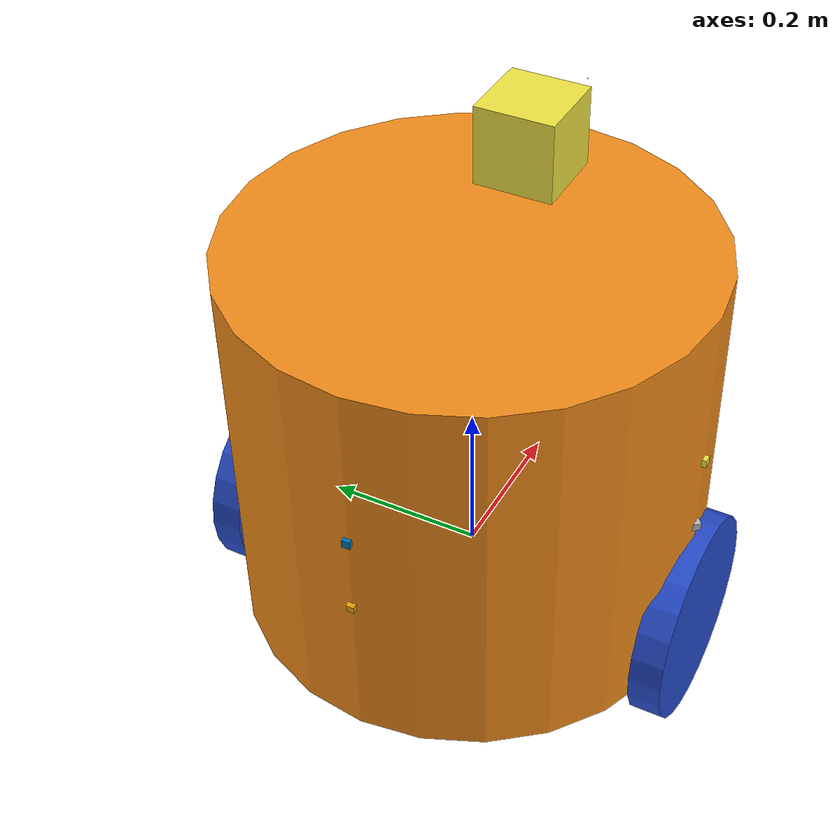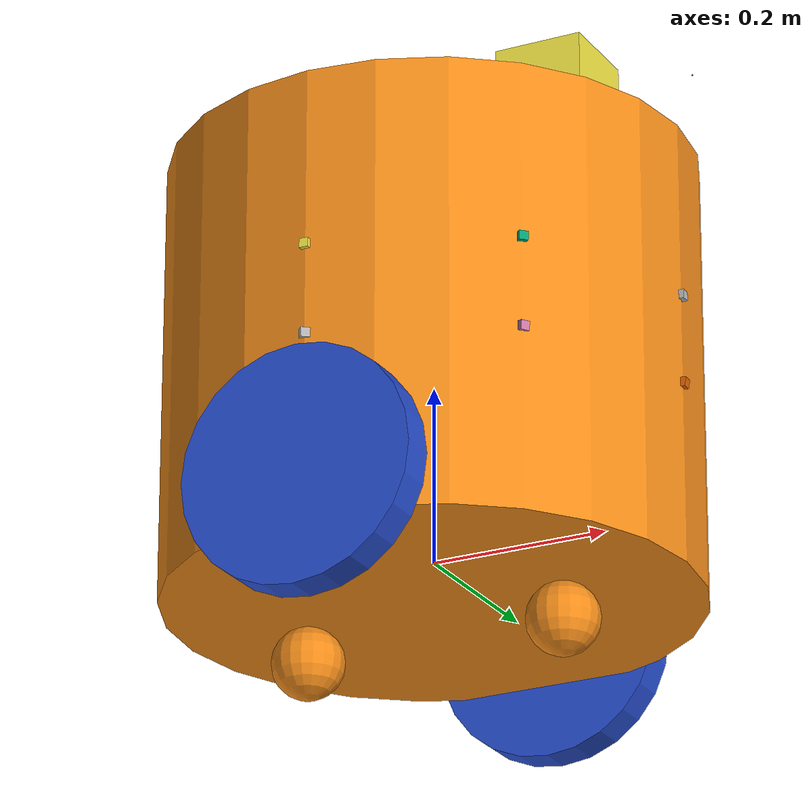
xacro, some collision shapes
<?xml version='1.0'?>

<robot name="myrobot_junior" xmlns:xacro="http://www.ros.org/wiki/xacro">

  <xacro:include filename="$(find myrobot_description)/urdf/myrobot_junior.gazebo" />
  <xacro:include filename="$(find myrobot_description)/urdf/materials.xacro" />

  <link name='base_footprint'>

    <pose>0 0 0.1 0 0 0</pose>

    <inertial>
      <mass value="15.0"/>
      <origin xyz="0.0 0 0.1" rpy=" 0 0 0"/>
      <inertia
          ixx="0.1"
          ixy="0"
          ixz="0"
          iyy="0.1"
          iyz="0"
          izz="0.1"/>
    </inertial>

    <collision name='collision'>
      <origin xyz="0 0 0.20" rpy=" 0 0 0"/>
      <geometry>
        <cylinder radius="0.291" length="0.5"/>
      </geometry>
    </collision>

    <visual name='base_footprint_visual'>
      <origin xyz="0 0 0.20" rpy=" 0 0 0"/>
      <geometry>

        <cylinder radius="0.291" length="0.5"/>
      </geometry>
    </visual>

    <collision name='caster_collision'>
      <origin xyz="-0.15 0 -0.088" rpy=" 0 0 0"/>
      <geometry>
        <sphere radius="0.04"/>
      </geometry>
      <surface>
        <friction>
          <ode>
            <mu>0</mu>
            <mu2>0</mu2>
            <slip1>1.0</slip1>
            <slip2>1.0</slip2>
          </ode>
        </friction>
      </surface>
    </collision>

    <visual name='caster_visual'>
      <origin xyz="-0.15 0 -0.088" rpy=" 0 0 0"/>
      <geometry>
        <sphere radius="0.04"/>
      </geometry>
    </visual>

    <collision name='caster_front_collision'>
      <origin xyz="0.15 0 -0.088" rpy=" 0 0 0"/>
      <geometry>
        <sphere radius="0.04"/>
      </geometry>
      <surface>
        <friction>
          <ode>
            <mu>0</mu>
            <mu2>0</mu2>
            <slip1>1.0</slip1>
            <slip2>1.0</slip2>
          </ode>
        </friction>
      </surface>
    </collision>

    <visual name='caster_front_visual'>
      <origin xyz="0.15 0 -0.088" rpy=" 0 0 0"/>
      <geometry>
        <sphere radius="0.04"/>
      </geometry>
    </visual>

  </link>

  <link name="left_wheel">
    <collision name="collision">
      <origin xyz="0 0 0" rpy="0 1.5707 1.5707"/>
      <geometry>
        <cylinder radius="0.13" length="0.04"/>
      </geometry>
    </collision>

    <visual name="left_wheel_visual">
      <origin xyz="0 0 0" rpy="0 1.5707 1.5707"/>
      <geometry>
        <cylinder radius="0.13" length="0.04"/>
      </geometry>
    </visual>

    <inertial>
      <origin xyz="0 0 0" rpy="0 1.5707 1.5707"/>
      <mass value="5"/>
      <inertia
        ixx=".1" ixy="0.0" ixz="0.0"
        iyy=".1" iyz="0.0"
        izz=".1"/>
    </inertial>
  </link>

  <link name="right_wheel">
    <collision name="collision">
      <origin xyz="0 0 0" rpy="0 1.5707 1.5707"/>
      <geometry>
        <cylinder radius="0.13" length="0.04"/>
      </geometry>
    </collision>

    <visual name="right_wheel_visual">
      <origin xyz="0 0 0" rpy="0 1.5707 1.5707"/>
      <geometry>
        <cylinder radius="0.13" length="0.04"/>
      </geometry>
    </visual>

    <inertial>
      <origin xyz="0 0 0" rpy="0 1.5707 1.5707"/>
      <mass value="5"/>
      <inertia
        ixx=".1" ixy="0.0" ixz="0.0"
        iyy=".1" iyz="0.0"
        izz=".1"/>
    </inertial>
  </link>

  <!-- rplidar Laser -->
  <link name="base_scan">
    <collision>
      <origin xyz="0 0 0" rpy="0 0 0"/>
      <geometry>
    <box size="0.1 0.1 0.1"/>
      </geometry>
    </collision>

    <visual>
      <origin xyz="0 0 0" rpy="0 0 0"/>
      <geometry>
        <mesh filename="package://myrobot_description/meshes/rplidar.dae"/>
      </geometry>
    </visual>

    <inertial>
      <mass value="1e-5" />
      <origin xyz="0 0 0" rpy="0 0 0"/>
      <inertia ixx="1e-6" ixy="0" ixz="0" iyy="1e-6" iyz="0" izz="1e-6" />
    </inertial>
  </link>

  <!-- Orbbec Astra RGBD Camera -->
  <joint name="astra_joint" type="fixed">
    <axis xyz="0 0 0" />
    <origin xyz="0.290 0 0.505" rpy="0 0 0"/>
    <parent link="base_footprint"/>
    <child link="camera_link"/>
  </joint>

  <link name="camera_link">
    <collision>
      <origin xyz="0.02 0 0" rpy="0 0 0"/>
      <geometry>0
        <box size="0.001 0.001 0.001"/>
      </geometry>
    </collision>

    <visual>
      <origin xyz="-0.01 0 -0.03" rpy="1.5707 0 1.5707"/>
      <geometry>
        <mesh filename="package://myrobot_description/meshes/astra.dae" scale="0.001 0.001 0.001" />
      </geometry>
    </visual>

    <inertial>
      <mass value="1e-5" />
      <origin xyz="0 0 0" rpy="0 0 0"/>
      <inertia ixx="0" ixy="0" ixz="0" iyy="0" iyz="0" izz="0" />
    </inertial>
  </link>

  <joint name="camera_optical_joint" type="fixed">
    <origin xyz="0 0 0" rpy="${-pi/2} 0 ${-pi/2}"/>
    <parent link="camera_link"/>
    <child link="camera_rgb_frame"/>
  </joint>

  <link name="camera_rgb_frame">
  </link>

  <joint name="camera_depth_joint" type="fixed">
    <origin xyz="0 0 0" rpy="${-pi/2} 0 ${-pi/2}"/>
    <parent link="camera_link"/>
    <child link="camera_depth_frame"/>
  </joint>

  <link name="camera_depth_frame">
  </link>

  <!--Sonar Sensor -->
  <link name="base_sonar_front">
    <collision>
      <origin xyz="0 0 0" rpy="0 0 0"/>
      <geometry>
        <box size="0.01 0.01 0.01"/>
      </geometry>
    </collision>

    <visual>
      <origin xyz="0 0 0" rpy="0 0 0"/>
      <geometry>
        <box size="0.01 0.01 0.01"/>
      </geometry>
    </visual>

    <inertial>
      <mass value="1e-5" />
      <origin xyz="0 0 0" rpy="0 0 0"/>
      <inertia ixx="1e-6" ixy="0" ixz="0" iyy="1e-6" iyz="0" izz="1e-6" />
    </inertial>
  </link>

  <link name="base_ir_left_1">
    <collision>
      <origin xyz="0 0 0" rpy="0 0 0"/>
      <geometry>
        <box size="0.01 0.01 0.01"/>
      </geometry>
    </collision>

    <visual>
      <origin xyz="0 0 0" rpy="0 0 0"/>
      <geometry>
        <box size="0.01 0.01 0.01"/>
      </geometry>
    </visual>

    <inertial>
      <mass value="1e-5" />
      <origin xyz="0 0 0" rpy="0 0 0"/>
      <inertia ixx="1e-6" ixy="0" ixz="0" iyy="1e-6" iyz="0" izz="1e-6" />
    </inertial>
  </link>

  <link name="base_ir_left_2">
    <collision>
      <origin xyz="0 0 0" rpy="0 0 0"/>
      <geometry>
        <box size="0.01 0.01 0.01"/>
      </geometry>
    </collision>

    <visual>
      <origin xyz="0 0 0" rpy="0 0 0"/>
      <geometry>
        <box size="0.01 0.01 0.01"/>
      </geometry>
    </visual>

    <inertial>
      <mass value="1e-5" />
      <origin xyz="0 0 0" rpy="0 0 0"/>
      <inertia ixx="1e-6" ixy="0" ixz="0" iyy="1e-6" iyz="0" izz="1e-6" />
    </inertial>
  </link>

  <link name="base_ir_right_1">
    <collision>
      <origin xyz="0 0 0" rpy="0 0 0"/>
      <geometry>
        <box size="0.01 0.01 0.01"/>
      </geometry>
    </collision>

    <visual>
      <origin xyz="0 0 0" rpy="0 0 0"/>
      <geometry>
        <box size="0.01 0.01 0.01"/>
      </geometry>
    </visual>

    <inertial>
      <mass value="1e-5" />
      <origin xyz="0 0 0" rpy="0 0 0"/>
      <inertia ixx="1e-6" ixy="0" ixz="0" iyy="1e-6" iyz="0" izz="1e-6" />
    </inertial>
  </link>

  <link name="base_ir_right_2">
    <collision>
      <origin xyz="0 0 0" rpy="0 0 0"/>
      <geometry>
        <box size="0.01 0.01 0.01"/>
      </geometry>
    </collision>

    <visual>
      <origin xyz="0 0 0" rpy="0 0 0"/>
      <geometry>
        <box size="0.01 0.01 0.01"/>
      </geometry>
    </visual>

    <inertial>
      <mass value="1e-5" />
      <origin xyz="0 0 0" rpy="0 0 0"/>
      <inertia ixx="1e-6" ixy="0" ixz="0" iyy="1e-6" iyz="0" izz="1e-6" />
    </inertial>
  </link>

  <link name="base_sonar_back">
    <collision>
      <origin xyz="0 0 0" rpy="0 0 0"/>
      <geometry>
        <box size="0.01 0.01 0.01"/>
      </geometry>
    </collision>

    <visual>
      <origin xyz="0 0 0" rpy="0 0 0"/>
      <geometry>
        <box size="0.01 0.01 0.01"/>
      </geometry>
    </visual>

    <inertial>
      <mass value="1e-5" />
      <origin xyz="0 0 0" rpy="0 0 0"/>
      <inertia ixx="1e-6" ixy="0" ixz="0" iyy="1e-6" iyz="0" izz="1e-6" />
    </inertial>
 </link>

<!--Cliff Sensors-->

  <link name="cliff_ir_front">
    <collision>
      <origin xyz="0 0 0" rpy="0 0 0"/>
      <geometry>
        <box size="0.01 0.01 0.01"/>
      </geometry>
    </collision>

    <visual>
      <origin xyz="0 0 0" rpy="0 0 0"/>
      <geometry>
        <box size="0.01 0.01 0.01"/>
      </geometry>
    </visual>

    <inertial>
      <mass value="1e-5" />
      <origin xyz="0 0 0" rpy="0 0 0"/>
      <inertia ixx="1e-6" ixy="0" ixz="0" iyy="1e-6" iyz="0" izz="1e-6" />
    </inertial>
  </link>

  <link name="cliff_ir_right_1">
    <collision>
      <origin xyz="0 0 0" rpy="0 0 0"/>
      <geometry>
        <box size="0.01 0.01 0.01"/>
      </geometry>
    </collision>

    <visual>
      <origin xyz="0 0 0" rpy="0 0 0"/>
      <geometry>
        <box size="0.01 0.01 0.01"/>
      </geometry>
    </visual>

    <inertial>
      <mass value="1e-5" />
      <origin xyz="0 0 0" rpy="0 0 0"/>
      <inertia ixx="1e-6" ixy="0" ixz="0" iyy="1e-6" iyz="0" izz="1e-6" />
    </inertial>
  </link>

  <link name="cliff_ir_right_2">
    <collision>
      <origin xyz="0 0 0" rpy="0 0 0"/>
      <geometry>
        <box size="0.01 0.01 0.01"/>
      </geometry>
    </collision>

    <visual>
      <origin xyz="0 0 0" rpy="0 0 0"/>
      <geometry>
        <box size="0.01 0.01 0.01"/>
      </geometry>
    </visual>

    <inertial>
      <mass value="1e-5" />
      <origin xyz="0 0 0" rpy="0 0 0"/>
      <inertia ixx="1e-6" ixy="0" ixz="0" iyy="1e-6" iyz="0" izz="1e-6" />
    </inertial>
  </link>

  <link name="cliff_ir_back">
    <collision>
      <origin xyz="0 0 0" rpy="0 0 0"/>
      <geometry>
        <box size="0.01 0.01 0.01"/>
      </geometry>
    </collision>

    <visual>
      <origin xyz="0 0 0" rpy="0 0 0"/>
      <geometry>
        <box size="0.01 0.01 0.01"/>
      </geometry>
    </visual>

    <inertial>
      <mass value="1e-5" />
      <origin xyz="0 0 0" rpy="0 0 0"/>
      <inertia ixx="1e-6" ixy="0" ixz="0" iyy="1e-6" iyz="0" izz="1e-6" />
    </inertial>
  </link>

  <link name="cliff_ir_left_1">
    <collision>
      <origin xyz="0 0 0" rpy="0 0 0"/>
      <geometry>
        <box size="0.01 0.01 0.01"/>
      </geometry>
    </collision>

    <visual>
      <origin xyz="0 0 0" rpy="0 0 0"/>
      <geometry>
        <box size="0.01 0.01 0.01"/>
      </geometry>
    </visual>

    <inertial>
      <mass value="1e-5" />
      <origin xyz="0 0 0" rpy="0 0 0"/>
      <inertia ixx="1e-6" ixy="0" ixz="0" iyy="1e-6" iyz="0" izz="1e-6" />
    </inertial>
  </link>

  <link name="cliff_ir_left_2">
    <collision>
      <origin xyz="0 0 0" rpy="0 0 0"/>
      <geometry>
        <box size="0.01 0.01 0.01"/>
      </geometry>
    </collision>

    <visual>
      <origin xyz="0 0 0" rpy="0 0 0"/>
      <geometry>
        <box size="0.01 0.01 0.01"/>
      </geometry>
    </visual>

    <inertial>
      <mass value="1e-5" />
      <origin xyz="0 0 0" rpy="0 0 0"/>
      <inertia ixx="1e-6" ixy="0" ixz="0" iyy="1e-6" iyz="0" izz="1e-6" />
    </inertial>
  </link>

  <joint type="continuous" name="left_wheel_hinge">
    <origin xyz="0 0.291 0" rpy="0 0 0"/>
    <child link="left_wheel"/>
    <parent link="base_footprint"/>
    <axis xyz="0 1 0" rpy="0 0 0"/>
    <limit effort="10000" velocity="1000"/>
    <joint_properties damping="1.0" friction="1.0"/>
  </joint>

  <joint type="continuous" name="right_wheel_hinge">
    <origin xyz="0 -0.291 0" rpy="0 0 0"/>
    <child link="right_wheel"/>
    <parent link="base_footprint"/>
    <axis xyz="0 1 0" rpy="0 0 0"/>
    <limit effort="10000" velocity="1000"/>
    <joint_properties damping="1.0" friction="1.0"/>
  </joint>

  <joint name="rplidar_joint" type="fixed">
    <axis xyz="0 1 0" />
    <origin xyz=".15 0 0.51" rpy="0 0 0"/>
    <parent link="base_footprint"/>
    <child link="base_scan"/>
  </joint>

  <joint name="ir_front_joint" type="fixed">
    <axis xyz="0 1 0" />
    <origin xyz=".291 0 0.25" rpy="0 0 0"/>
    <parent link="base_footprint"/>
    <child link="base_sonar_front"/>
  </joint>

  <joint name="ir_left_1_joint" type="fixed">
    <axis xyz="0 1 0" />
    <origin rpy="0 0 0.785398" xyz="0.205768 0.205768 0.25" />
    <parent link="base_footprint"/>
    <child link="base_ir_left_1"/>
  </joint>

  <joint name="ir_right_1_joint" type="fixed">
    <axis xyz="0 1 0" />
    <origin rpy="0 0 -0.785398" xyz="0.205768 -0.205768 0.25" />
    <parent link="base_footprint"/>
    <child link="base_ir_right_1"/>
   </joint>

  <joint name="ir_left_2_joint" type="fixed">
    <axis xyz="0 1 0" />
    <origin rpy="0 0 1.5708" xyz="0 0.291 0.25" />
    <parent link="base_footprint"/>
    <child link="base_ir_left_2"/>
  </joint>

  <joint name="ir_right_2_joint" type="fixed">
    <axis xyz="0 1 0" />
    <origin rpy="0 0 -1.5708" xyz="0 -0.291 0.25" />
    <parent link="base_footprint"/>
    <child link="base_ir_right_2"/>
   </joint>

  <joint name="ir_back_joint" type="fixed">
    <axis xyz="0 0 1" />
    <origin xyz="-0.291 0 0.25" rpy="0 0 3.14"/>
    <parent link="base_footprint"/>
    <child link="base_sonar_back"/>
  </joint>

<!--Cliff Sensor Joints-->
  <joint name="cliff_front_joint" type="fixed">
    <axis xyz="0 1 0" />
    <origin xyz=".291 0 0.15" rpy="0 0.15 0"/>
    <parent link="base_footprint"/>
    <child link="cliff_ir_front"/>
  </joint>

  <joint name="cliff_right_1_joint" type="fixed">
    <axis xyz="0 1 0" />
    <origin rpy="0 0.15 -0.55" xyz="0.205768 -0.205768 0.15" />
    <parent link="base_footprint"/>
    <child link="cliff_ir_right_1"/>
  </joint>

  <joint name="cliff_right_2_joint" type="fixed">
    <axis xyz="0 1 0" />
    <origin rpy="0 0.15 -0.87" xyz="0 -0.291 0.15" />
    <parent link="base_footprint"/>
    <child link="cliff_ir_right_2"/>
  </joint>

  <joint name="cliff_left_1_joint" type="fixed">
    <axis xyz="0 1 0" />
    <origin rpy="0 0.15 0.55" xyz="0.205768 0.205768 0.15" />
    <parent link="base_footprint"/>
    <child link="cliff_ir_left_1"/>
  </joint>

  <joint name="cliff_left_2_joint" type="fixed">
    <axis xyz="0 1 0" />
    <origin rpy="0 0.15 0.87" xyz="0 0.291 0.15" />
    <parent link="base_footprint"/>
    <child link="cliff_ir_left_2"/>
  </joint>

  <joint name="cliff_back_joint" type="fixed">
    <axis xyz="0 0 1" />
    <origin xyz="-0.291 0 0.15" rpy="0 0.15 3.14"/>
    <parent link="base_footprint"/>
    <child link="cliff_ir_back"/>
  </joint>

</robot>
